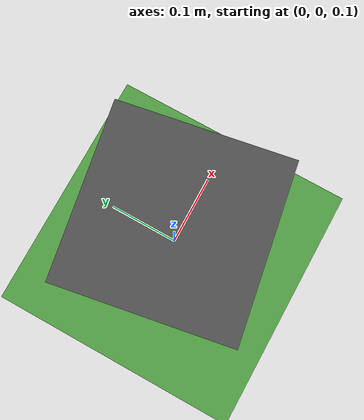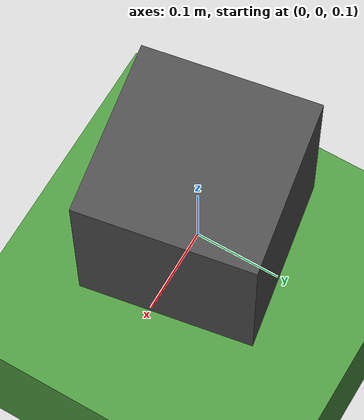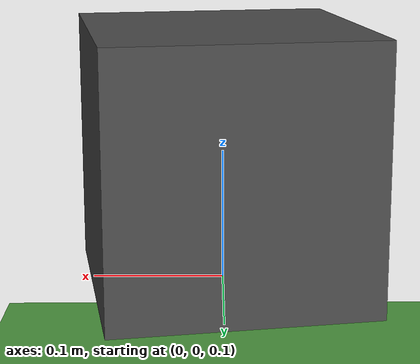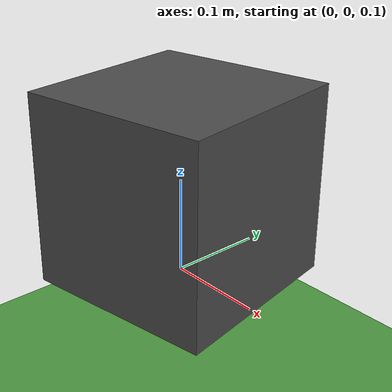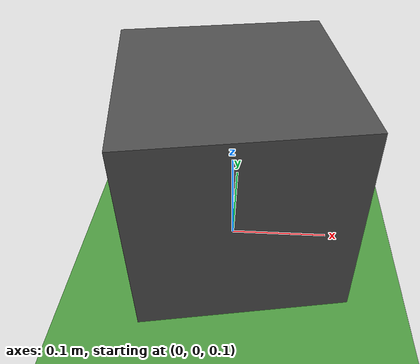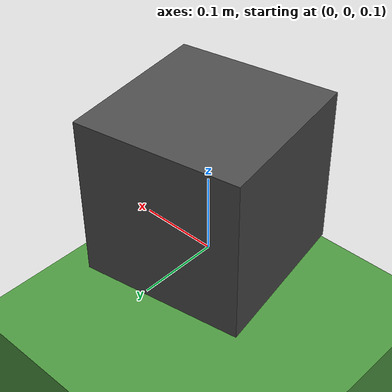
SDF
<sdf version='1.6'>
  <world name='default'>
    <light name='sun' type='directional'>
      <cast_shadows>1</cast_shadows>
      <pose frame=''>0 0 10 0 -0 0</pose>
      <diffuse>0.8 0.8 0.8 1</diffuse>
      <specular>0.2 0.2 0.2 1</specular>
      <attenuation>
        <range>1000</range>
        <constant>0.9</constant>
        <linear>0.01</linear>
        <quadratic>0.001</quadratic>
      </attenuation>
      <direction>-0.5 0.1 -0.9</direction>
    </light>

    <gravity>0 0 -9.8</gravity>
    <magnetic_field>6e-06 2.3e-05 -4.2e-05</magnetic_field>
    <atmosphere type='adiabatic'/>
    <physics name='default_physics' default='0' type='ode'>
      <max_step_size>0.001</max_step_size>
      <real_time_factor>1</real_time_factor>
      <real_time_update_rate>1000</real_time_update_rate>
    </physics>
    <scene>
      <ambient>0.8 0.8 0.8 1</ambient>
      <background>0.8 0.8 1 1</background>
      <shadows>1</shadows>
    </scene>
    <spherical_coordinates>
      <surface_model>EARTH_WGS84</surface_model>
      <world_frame_orientation>ENU</world_frame_orientation>
      <latitude_deg>56.4765729993</latitude_deg>
      <longitude_deg>85.0849835555</longitude_deg>
      <elevation>148.679004394</elevation>
      <heading_deg>0</heading_deg>
    </spherical_coordinates>

   <model name='helipad'>
        <static>1</static>
        <pose>0 0 -0.1  0 -0 0</pose>
        <link name='link'>
            <collision name='collision'>
                <geometry>
                    <box>
                        <size>2. 2. 0.2</size>
                    </box>
                </geometry>
                <surface>
                    <contact>
                        <ode />
                    </contact>
                    <friction>
                        <ode />
                    </friction>
                </surface>
            </collision>

         	<visual name='visual'>
	         <cast_shadows>0</cast_shadows>
	         <transparency>0</transparency>
                <geometry>
                    <box>
                        <size>2. 2. 0.2</size>
                    </box>
                </geometry>
                <material>
            		<script>
              			<uri>file://media/materials/scripts/gazebo.material</uri>
              			<name>Gazebo/Grass</name>
           			</script>
				</material>
	       </visual>

        </link>
    </model>

    <model name="iris">
      <pose>0 0 0  0 -0 -1.4</pose>
      <include>
        <uri>model://iris_with_standoffs_demo</uri>
         <pose> 0 0 0 0 0 0 </pose>
      </include>
    </model>

    <gui fullscreen='0'>
      <camera name='user_camera'>
        <pose frame=''>-5 0 7 0 0.423645 0</pose>
        <view_controller>orbit</view_controller>
        <projection_type>perspective</projection_type>
      </camera>
    </gui>
  </world>
</sdf>

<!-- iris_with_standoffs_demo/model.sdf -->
<sdf version="1.6" xmlns:xacro='http://ros.org/wiki/xacro'>
  <model name="iris_demo">
    <include>
      <uri>model://iris_with_standoffs</uri>
    </include>

    <plugin name="rotor_0_blade_1" filename="libLiftDragPlugin.so">
      <a0>0.3</a0>
      <alpha_stall>1.4</alpha_stall>
      <cla>4.2500</cla>
      <cda>0.10</cda>
      <cma>0.00</cma>
      <cla_stall>-0.025</cla_stall>
      <cda_stall>0.0</cda_stall>
      <cma_stall>0.0</cma_stall>
      <area>0.002</area>
      <air_density>1.2041</air_density>
      <cp>0.084 0 0</cp>
      <forward>0 1 0</forward>
      <upward>0 0 1</upward>
      <link_name>iris::rotor_0</link_name>
    </plugin>
    <plugin name="rotor_0_blade_2" filename="libLiftDragPlugin.so">
      <a0>0.3</a0>
      <alpha_stall>1.4</alpha_stall>
      <cla>4.2500</cla>
      <cda>0.10</cda>
      <cma>0.00</cma>
      <cla_stall>-0.025</cla_stall>
      <cda_stall>0.0</cda_stall>
      <cma_stall>0.0</cma_stall>
      <area>0.002</area>
      <air_density>1.2041</air_density>
      <cp>-0.084 0 0</cp>
      <forward>0 -1 0</forward>
      <upward>0 0 1</upward>
      <link_name>iris::rotor_0</link_name>
    </plugin>

    <plugin name="rotor_1_blade_1" filename="libLiftDragPlugin.so">
      <a0>0.3</a0>
      <alpha_stall>1.4</alpha_stall>
      <cla>4.2500</cla>
      <cda>0.10</cda>
      <cma>0.00</cma>
      <cla_stall>-0.025</cla_stall>
      <cda_stall>0.0</cda_stall>
      <cma_stall>0.0</cma_stall>
      <area>0.002</area>
      <air_density>1.2041</air_density>
      <cp>0.084 0 0</cp>
      <forward>0 1 0</forward>
      <upward>0 0 1</upward>
      <link_name>iris::rotor_1</link_name>
    </plugin>
    <plugin name="rotor_1_blade_2" filename="libLiftDragPlugin.so">
      <a0>0.3</a0>
      <alpha_stall>1.4</alpha_stall>
      <cla>4.2500</cla>
      <cda>0.10</cda>
      <cma>0.00</cma>
      <cla_stall>-0.025</cla_stall>
      <cda_stall>0.0</cda_stall>
      <cma_stall>0.0</cma_stall>
      <area>0.002</area>
      <air_density>1.2041</air_density>
      <cp>-0.084 0 0</cp>
      <forward>0 -1 0</forward>
      <upward>0 0 1</upward>
      <link_name>iris::rotor_1</link_name>
    </plugin>

    <plugin name="rotor_2_blade_1" filename="libLiftDragPlugin.so">
      <a0>0.3</a0>
      <alpha_stall>1.4</alpha_stall>
      <cla>4.2500</cla>
      <cda>0.10</cda>
      <cma>0.00</cma>
      <cla_stall>-0.025</cla_stall>
      <cda_stall>0.0</cda_stall>
      <cma_stall>0.0</cma_stall>
      <area>0.002</area>
      <air_density>1.2041</air_density>
      <cp>0.084 0 0</cp>
      <forward>0 -1 0</forward>
      <upward>0 0 1</upward>
      <link_name>iris::rotor_2</link_name>
    </plugin>
    <plugin name="rotor_2_blade_2" filename="libLiftDragPlugin.so">
      <a0>0.3</a0>
      <alpha_stall>1.4</alpha_stall>
      <cla>4.2500</cla>
      <cda>0.10</cda>
      <cma>0.00</cma>
      <cla_stall>-0.025</cla_stall>
      <cda_stall>0.0</cda_stall>
      <cma_stall>0.0</cma_stall>
      <area>0.002</area>
      <air_density>1.2041</air_density>
      <cp>-0.084 0 0</cp>
      <forward>0 1 0</forward>
      <upward>0 0 1</upward>
      <link_name>iris::rotor_2</link_name>
    </plugin>

    <plugin name="rotor_3_blade_1" filename="libLiftDragPlugin.so">
      <a0>0.3</a0>
      <alpha_stall>1.4</alpha_stall>
      <cla>4.2500</cla>
      <cda>0.10</cda>
      <cma>0.00</cma>
      <cla_stall>-0.025</cla_stall>
      <cda_stall>0.0</cda_stall>
      <cma_stall>0.0</cma_stall>
      <area>0.002</area>
      <air_density>1.2041</air_density>
      <cp>0.084 0 0</cp>
      <forward>0 -1 0</forward>
      <upward>0 0 1</upward>
      <link_name>iris::rotor_3</link_name>
    </plugin>
    <plugin name="rotor_3_blade_2" filename="libLiftDragPlugin.so">
      <a0>0.3</a0>
      <alpha_stall>1.4</alpha_stall>
      <cla>4.2500</cla>
      <cda>0.10</cda>
      <cma>0.00</cma>
      <cla_stall>-0.025</cla_stall>
      <cda_stall>0.0</cda_stall>
      <cma_stall>0.0</cma_stall>
      <area>0.002</area>
      <air_density>1.2041</air_density>
      <cp>-0.084 0 0</cp>
      <forward>0 1 0</forward>
      <upward>0 0 1</upward>
      <link_name>iris::rotor_3</link_name>
    </plugin>
    <plugin name="arducopter_plugin" filename="libArduPilotPlugin.so">
      <fdm_addr>127.0.0.1</fdm_addr>
      <fdm_port_in>9002</fdm_port_in>
      <fdm_port_out>9003</fdm_port_out>
      <!--
          Require by APM :
          Only change model and gazebo from XYZ to XY-Z coordinates
      -->
      <modelXYZToAirplaneXForwardZDown>0 0 0 3.141593 0 0</modelXYZToAirplaneXForwardZDown>
      <gazeboXYZToNED>0 0 0 3.141593 0 1.5707965</gazeboXYZToNED>
      <imuName>iris_demo::iris::iris/imu_link::imu_sensor</imuName>
      <connectionTimeoutMaxCount>5</connectionTimeoutMaxCount>
      <control channel="0">
      <!--
          incoming control command [0, 1]
          so offset it by 0 to get [0, 1]
          and divide max target by 1.
          offset = 0
          multiplier = 838 max rpm / 1 = 838
        -->
        <type>VELOCITY</type>
        <offset>0</offset>
        <p_gain>0.20</p_gain>
        <i_gain>0</i_gain>
        <d_gain>0</d_gain>
        <i_max>0</i_max>
        <i_min>0</i_min>
        <cmd_max>2.5</cmd_max>
        <cmd_min>-2.5</cmd_min>
        <jointName>iris::rotor_0_joint</jointName>
        <multiplier>838</multiplier>
        <controlVelocitySlowdownSim>1</controlVelocitySlowdownSim>
      </control>
      <control channel="1">
        <type>VELOCITY</type>
        <offset>0</offset>
        <p_gain>0.20</p_gain>
        <i_gain>0</i_gain>
        <d_gain>0</d_gain>
        <i_max>0</i_max>
        <i_min>0</i_min>
        <cmd_max>2.5</cmd_max>
        <cmd_min>-2.5</cmd_min>
        <jointName>iris::rotor_1_joint</jointName>
        <multiplier>838</multiplier>
        <controlVelocitySlowdownSim>1</controlVelocitySlowdownSim>
      </control>
      <control channel="2">
        <type>VELOCITY</type>
        <offset>0</offset>
        <p_gain>0.20</p_gain>
        <i_gain>0</i_gain>
        <d_gain>0</d_gain>
        <i_max>0</i_max>
        <i_min>0</i_min>
        <cmd_max>2.5</cmd_max>
        <cmd_min>-2.5</cmd_min>
        <jointName>iris::rotor_2_joint</jointName>
        <multiplier>-838</multiplier>
        <controlVelocitySlowdownSim>1</controlVelocitySlowdownSim>
      </control>
      <control channel="3">
        <type>VELOCITY</type>
        <offset>0</offset>
        <p_gain>0.20</p_gain>
        <i_gain>0</i_gain>
        <d_gain>0</d_gain>
        <i_max>0</i_max>
        <i_min>0</i_min>
        <cmd_max>2.5</cmd_max>
        <cmd_min>-2.5</cmd_min>
        <jointName>iris::rotor_3_joint</jointName>
        <multiplier>-838</multiplier>
        <controlVelocitySlowdownSim>1</controlVelocitySlowdownSim>
      </control>
    </plugin>

  </model>
</sdf>

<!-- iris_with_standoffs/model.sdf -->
<sdf version='1.6'>
  <model name='iris'>
    <pose>0 0 0.194923 0 0 0</pose>
    <link name='base_link'>
      <inertial>
        <pose>0 0 0 0 0 0</pose>
        <mass>1.5</mass>
        <inertia>
          <ixx>0.008</ixx>
          <ixy>0</ixy>
          <ixz>0</ixz>
          <iyy>0.015</iyy>
          <iyz>0</iyz>
          <izz>0.017</izz>
        </inertia>
      </inertial>
      <collision name='base_link_collision'>
        <pose>0 0 -0.08 0 0 0</pose>
        <geometry>
          <box>
            <size>0.47 0.47 0.23</size>
          </box>
        </geometry>
      </collision>
      <visual name='base_link_visual'>
        <geometry>
          <box>
            <size>0.2 0.2 0.2</size>
          </box>
        </geometry>
        <material>
          <script>
            <name>Gazebo/DarkGrey</name>
          </script>
        </material>
      </visual>
    </link>
    <link name='iris/imu_link'>
      <inertial>
        <pose>0 0 0 0 0 0</pose>
        <mass>0.15</mass>
        <inertia>
          <ixx>0.00001</ixx>
          <ixy>0</ixy>
          <ixz>0</ixz>
          <iyy>0.00002</iyy>
          <iyz>0</iyz>
          <izz>0.00002</izz>
        </inertia>
      </inertial>
      <sensor name="imu_sensor" type="imu">
        <pose>0 0 0 3.141593 0 0</pose>
        <always_on>1</always_on>
        <update_rate>1000.0</update_rate>
      </sensor>
    </link>
    <joint name='iris/imu_joint' type='revolute'>
      <child>iris/imu_link</child>
      <parent>base_link</parent>
      <axis>
        <xyz>0 0 1</xyz>
        <limit>
          <lower>0</lower>
          <upper>0</upper>
          <effort>0</effort>
          <velocity>0</velocity>
        </limit>
        <dynamics>
          <damping>1.0</damping>
        </dynamics>
        <use_parent_model_frame>1</use_parent_model_frame>
      </axis>
      <physics>
        <ode>
          <implicit_spring_damper>1</implicit_spring_damper>
        </ode>
      </physics>
    </joint>

    <link name='rotor_0'>
      <pose>0.13 -0.22 0.023 0 -0 0</pose>
      <inertial>
        <pose>0 0 0 0 -0 0</pose>
        <mass>0.025</mass>
        <inertia>
          <ixx>9.75e-06</ixx>
          <ixy>0</ixy>
          <ixz>0</ixz>
          <iyy>0.000166704</iyy>
          <iyz>0</iyz>
          <izz>0.000167604</izz>
        </inertia>
      </inertial>
      <collision name='rotor_0_collision'>
        <pose>0 0 0 0 -0 0</pose>
        <geometry>
          <cylinder>
            <length>0.005</length>
            <radius>0.1</radius>
          </cylinder>
        </geometry>
        <surface>
          <contact>
            <ode/>
          </contact>
          <friction>
            <ode/>
          </friction>
        </surface>
      </collision>
      <gravity>1</gravity>
      <velocity_decay/>
      <self_collide>0</self_collide>
    </link>
    <joint name='rotor_0_joint' type='revolute'>
      <child>rotor_0</child>
      <parent>base_link</parent>
      <axis>
        <xyz>0 0 1</xyz>
        <limit>
          <lower>-1e+16</lower>
          <upper>1e+16</upper>
        </limit>
        <dynamics>
          <damping>0.004</damping>
        </dynamics>
        <use_parent_model_frame>1</use_parent_model_frame>
      </axis>
      <physics>
        <ode>
          <implicit_spring_damper>1</implicit_spring_damper>
        </ode>
      </physics>
    </joint>
    <link name='rotor_1'>
      <pose>-0.13 0.2 0.023 0 -0 0</pose>
      <inertial>
        <pose>0 0 0 0 -0 0</pose>
        <mass>0.025</mass>
        <inertia>
          <ixx>9.75e-06</ixx>
          <ixy>0</ixy>
          <ixz>0</ixz>
          <iyy>0.000166704</iyy>
          <iyz>0</iyz>
          <izz>0.000167604</izz>
        </inertia>
      </inertial>
      <collision name='rotor_1_collision'>
        <pose>0 0 0 0 -0 0</pose>
        <geometry>
          <cylinder>
            <length>0.005</length>
            <radius>0.1</radius>
          </cylinder>
        </geometry>
        <surface>
          <contact>
            <ode/>
          </contact>
          <friction>
            <ode/>
          </friction>
        </surface>
      </collision>
      <gravity>1</gravity>
      <velocity_decay/>
      <self_collide>0</self_collide>
    </link>
    <joint name='rotor_1_joint' type='revolute'>
      <child>rotor_1</child>
      <parent>base_link</parent>
      <axis>
        <xyz>0 0 1</xyz>
        <limit>
          <lower>-1e+16</lower>
          <upper>1e+16</upper>
        </limit>
        <dynamics>
          <damping>0.004</damping>
        </dynamics>
        <use_parent_model_frame>1</use_parent_model_frame>
      </axis>
      <physics>
        <ode>
          <implicit_spring_damper>1</implicit_spring_damper>
        </ode>
      </physics>
    </joint>
    <link name='rotor_2'>
      <pose>0.13 0.22 0.023 0 -0 0</pose>
      <inertial>
        <pose>0 0 0 0 -0 0</pose>
        <mass>0.025</mass>
        <inertia>
          <ixx>9.75e-06</ixx>
          <ixy>0</ixy>
          <ixz>0</ixz>
          <iyy>0.000166704</iyy>
          <iyz>0</iyz>
          <izz>0.000167604</izz>
        </inertia>
      </inertial>
      <collision name='rotor_2_collision'>
        <pose>0 0 0 0 -0 0</pose>
        <geometry>
          <cylinder>
            <length>0.005</length>
            <radius>0.1</radius>
          </cylinder>
        </geometry>
        <surface>
          <contact>
            <ode/>
          </contact>
          <friction>
            <ode/>
          </friction>
        </surface>
      </collision>
      <gravity>1</gravity>
      <velocity_decay/>
      <self_collide>0</self_collide>
    </link>
    <joint name='rotor_2_joint' type='revolute'>
      <child>rotor_2</child>
      <parent>base_link</parent>
      <axis>
        <xyz>0 0 1</xyz>
        <limit>
          <lower>-1e+16</lower>
          <upper>1e+16</upper>
        </limit>
        <dynamics>
          <damping>0.004</damping>
        </dynamics>
        <use_parent_model_frame>1</use_parent_model_frame>
      </axis>
      <physics>
        <ode>
          <implicit_spring_damper>1</implicit_spring_damper>
        </ode>
      </physics>
    </joint>
    <link name='rotor_3'>
      <pose>-0.13 -0.2 0.023 0 -0 0</pose>
      <inertial>
        <pose>0 0 0 0 -0 0</pose>
        <mass>0.025</mass>
        <inertia>
          <ixx>9.75e-06</ixx>
          <ixy>0</ixy>
          <ixz>0</ixz>
          <iyy>0.000166704</iyy>
          <iyz>0</iyz>
          <izz>0.000167604</izz>
        </inertia>
      </inertial>
      <collision name='rotor_3_collision'>
        <pose>0 0 0 0 -0 0</pose>
        <geometry>
          <cylinder>
            <length>0.005</length>
            <radius>0.1</radius>
          </cylinder>
        </geometry>
        <surface>
          <contact>
            <ode/>
          </contact>
          <friction>
            <ode/>
          </friction>
        </surface>
      </collision>
      <gravity>1</gravity>
      <velocity_decay/>
      <self_collide>0</self_collide>
    </link>
    <joint name='rotor_3_joint' type='revolute'>
      <child>rotor_3</child>
      <parent>base_link</parent>
      <axis>
        <xyz>0 0 1</xyz>
        <limit>
          <lower>-1e+16</lower>
          <upper>1e+16</upper>
        </limit>
        <dynamics>
          <damping>0.004</damping>
        </dynamics>
        <use_parent_model_frame>1</use_parent_model_frame>
      </axis>
      <physics>
        <ode>
          <implicit_spring_damper>1</implicit_spring_damper>
        </ode>
      </physics>
    </joint>
    <static>0</static>
  </model>
</sdf>
